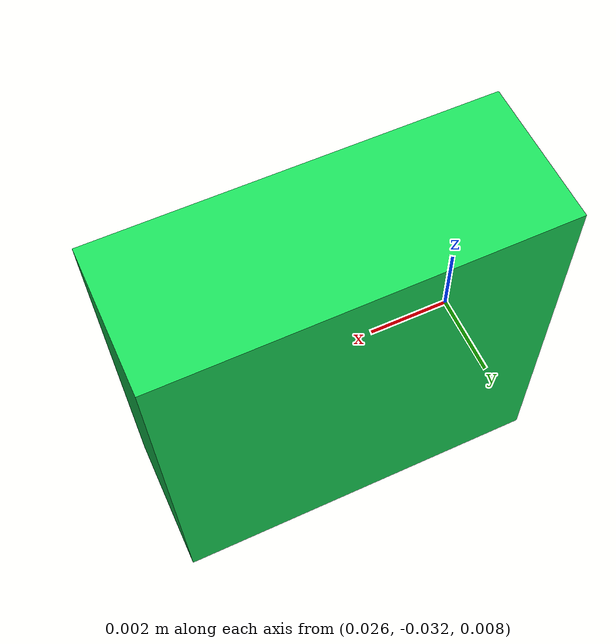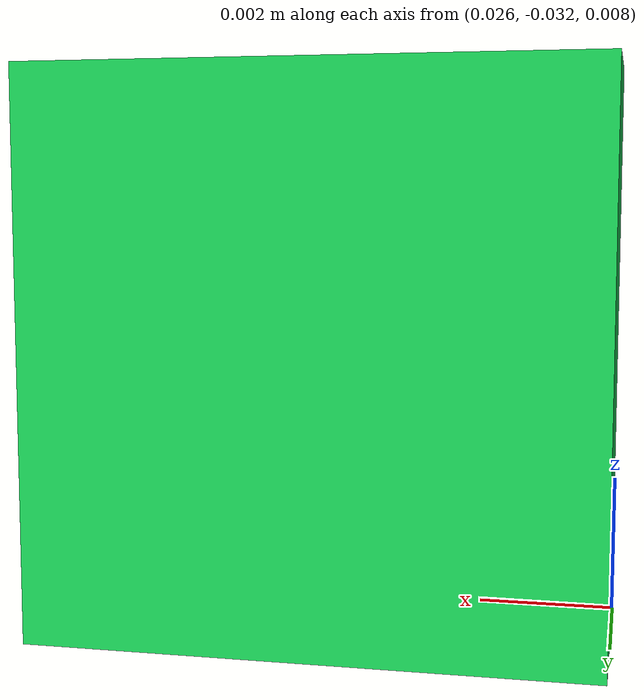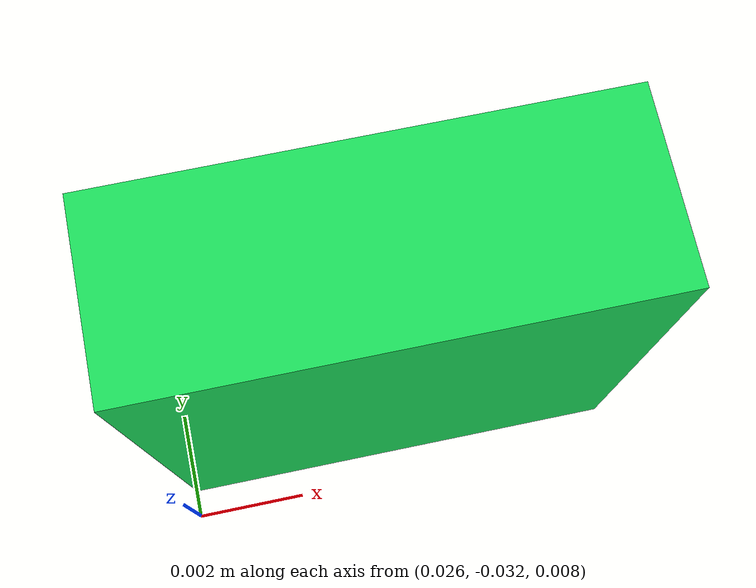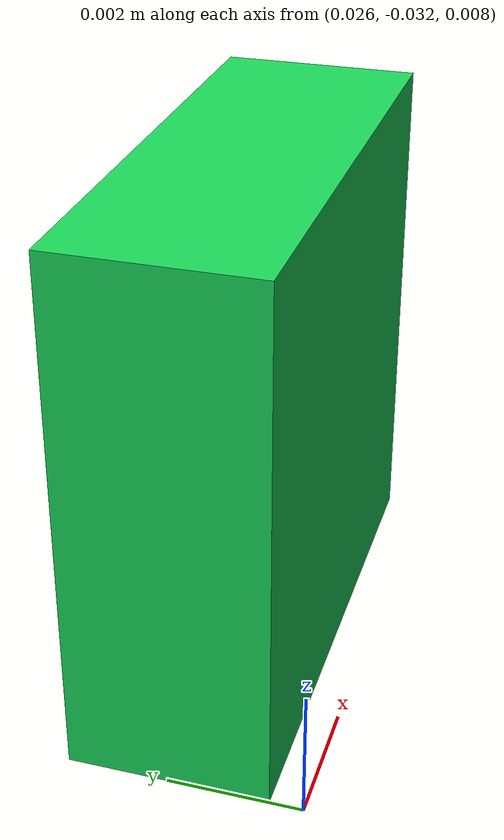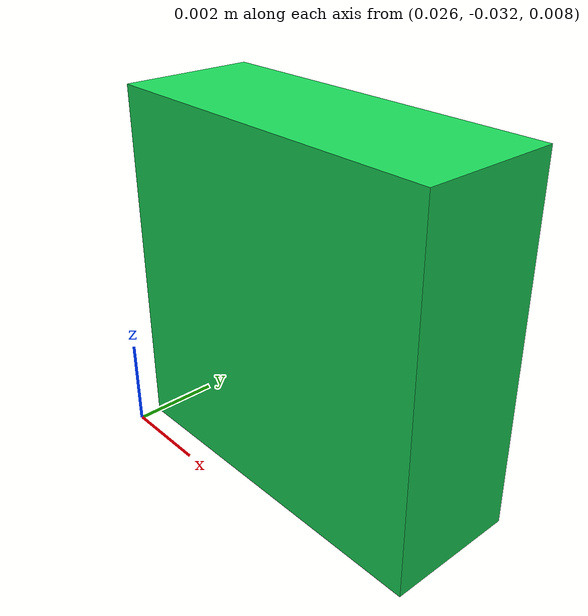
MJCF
<?xml version="1.0" ?>
<mujoco model="t2_ld_bare">
  <compiler angle="radian" autolimits="true" meshdir="/home/ftk3187/github/ASSY/m24_design_closure/out/ld_mesh_assets"/>
  <option timestep="0.0001" integrator="implicitfast" cone="elliptic" impratio="10" gravity="0 0 0"/>
  <visual>
    <headlight ambient="0.5 0.5 0.5" diffuse="0.6 0.6 0.6" specular="0.2 0.2 0.2"/>
    <global offwidth="1280" offheight="960"/>
  </visual>
  <default>
    <geom density="0" contype="0" conaffinity="0" group="2"/>
  </default>
  <asset>
    <material name="cab" rgba="0.60 0.66 0.72 0.30"/>
    <material name="bump" rgba="0.85 0.30 0.30 1"/>
    <material name="drawer" rgba="0.95 0.72 0.35 1"/>
    <material name="clip" rgba="0.20 0.55 0.95 1"/>
    <material name="mk" rgba="0.10 0.85 0.35 1"/>
  </asset>
  <worldbody>
    <light pos="0.02 -0.2 0.3" dir="-0.05 0.3 -1" directional="true" diffuse="0.5 0.5 0.5"/>
    <camera name="cutaway" pos="0.03 -0.12 0.055" xyaxes="1 0 0 0 0.4 0.92"/>
    <camera name="zoom" pos="0.020 -0.045 0.020" xyaxes="1 0 0 0 0.5 0.87"/>
    <body name="drawer" pos="0 0 0">
      <inertial mass="0.050000" pos="0.010595 0.000167 0.010339" diaginertia="2.432443e-05 2.036792e-05 4.147441e-05"/>
      <joint name="drawer_slide" type="slide" axis="1 0 0" pos="0 0 0" limited="true" range="0 0.050000" damping="150" solreflimit="0.002 1" solimplimit="0.99 0.9999 1e-5 0.5 2"/>
      <geom name="mk_drawer" type="box" pos="0.030 -0.030 0.012" size="0.004 0.0015 0.004" material="mk"/>
    </body>
  </worldbody>
  <equality>
    <joint name="latch" joint1="drawer_slide" polycoef="0 0 0 0 0" active="false" solref="-1e8 -1e4" solimp="0.9999 0.99999 1e-6 0.5 2"/>
  </equality>
  <actuator>
    <velocity name="drive" joint="drawer_slide" kv="600"/>
  </actuator>
</mujoco>
